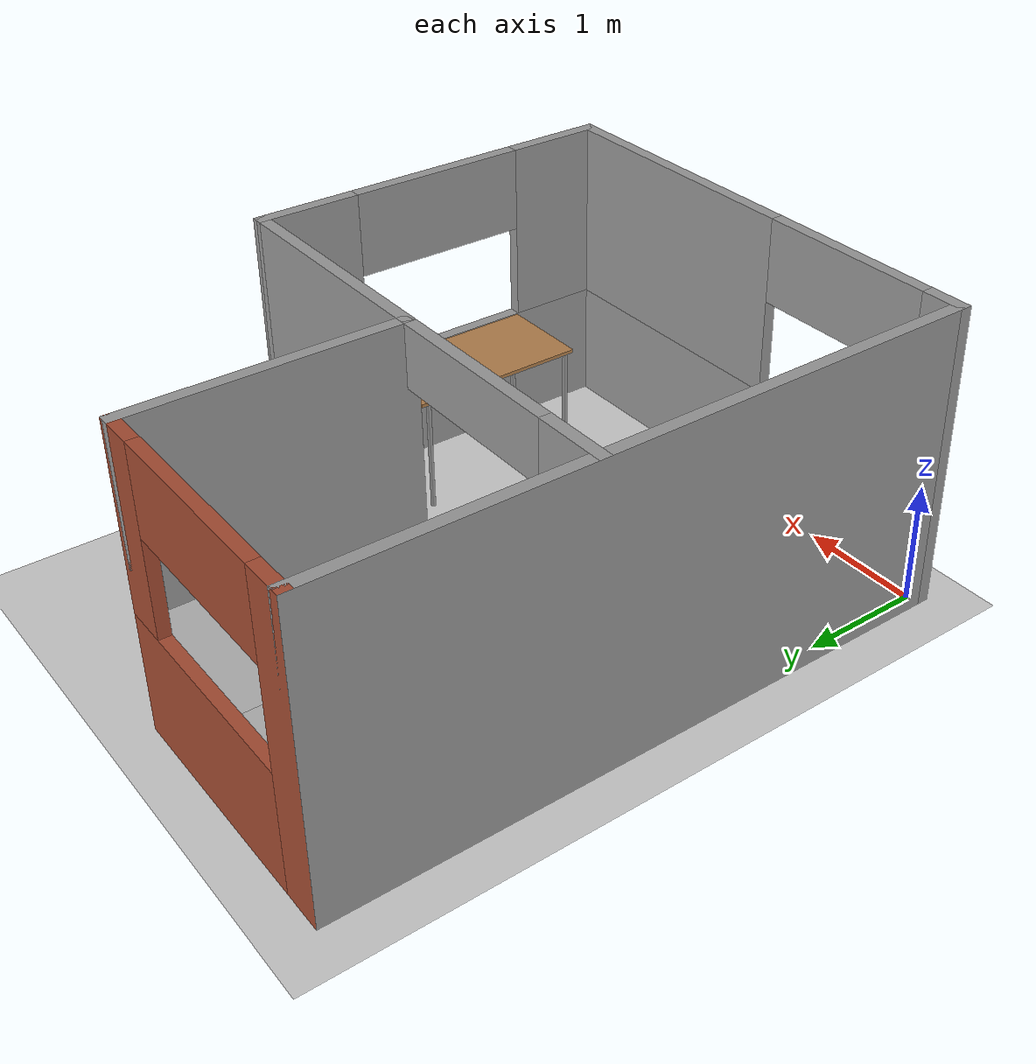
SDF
<sdf version="1.6">
 <world name="default">
  <light name="sun" type="directional">
   <pose>0 0 10 0 -0 0</pose>
   <diffuse>0.8 0.8 0.8 1</diffuse>
   <specular>0.2 0.2 0.2 1</specular>
   <attenuation>
    <range>1000</range>
    <constant>0.9</constant>
    <linear>0.01</linear>
    <quadratic>0.001</quadratic>
   </attenuation>
   <direction>-0.5 0.1 -0.9</direction>
  </light>
  <model name="ground_plane">
   <static>1</static>
   <link name="link">
    <collision name="collision">
     <geometry><plane><normal>0 0 1</normal><size>100 100</size></plane></geometry>
     <surface>
      <contact><collide_bitmask>65535</collide_bitmask></contact>
      <friction><ode><mu>100</mu><mu2>50</mu2></ode></friction>
     </surface>
    </collision>
    <visual name="visual">
     <cast_shadows>0</cast_shadows>
     <geometry><plane><normal>0 0 1</normal><size>100 100</size></plane></geometry>
     <material>
      <script><uri>file://media/materials/scripts/gazebo.material</uri><name>Gazebo/Grey</name></script>
     </material>
    </visual>
   </link>
  </model>
  <gravity>0 0 -9.8</gravity>
  <magnetic_field>6e-06 2.3e-05 -4.2e-05</magnetic_field>
  <atmosphere type="adiabatic"/>
  <physics name="default_physics" default="0" type="ode">
   <max_step_size>0.001</max_step_size>
   <real_time_factor>1</real_time_factor>
   <real_time_update_rate>1000</real_time_update_rate>
  </physics>
  <scene><ambient>0.4 0.4 0.4 1</ambient><background>0.7 0.7 0.7 1</background><shadows>1</shadows></scene>
  <audio><device>default</device></audio>
  <spherical_coordinates>
   <surface_model>EARTH_WGS84</surface_model>
   <latitude_deg>0</latitude_deg>
   <longitude_deg>0</longitude_deg>
   <elevation>0</elevation>
   <heading_deg>0</heading_deg>
  </spherical_coordinates>
  <model name="table">
   <static>1</static>
   <link name="link">
    <collision name="surface">
     <pose>0 0 1 0 -0 0</pose>
     <geometry><box><size>1.5 0.8 0.03</size></box></geometry>
     <surface><friction><ode><mu>0.6</mu><mu2>0.6</mu2></ode></friction></surface>
    </collision>
    <visual name="visual1">
     <pose>0 0 1 0 -0 0</pose>
     <geometry><box><size>1.5 0.8 0.03</size></box></geometry>
     <material>
      <script><uri>file://media/materials/scripts/gazebo.material</uri><name>Gazebo/Wood</name></script>
     </material>
    </visual>
    <collision name="front_left_leg">
     <pose>0.68 0.38 0.5 0 -0 0</pose>
     <geometry><cylinder><radius>0.02</radius><length>1</length></cylinder></geometry>
    </collision>
    <visual name="front_left_leg">
     <pose>0.68 0.38 0.5 0 -0 0</pose>
     <geometry><cylinder><radius>0.02</radius><length>1</length></cylinder></geometry>
     <material>
      <script><uri>file://media/materials/scripts/gazebo.material</uri><name>Gazebo/Grey</name></script>
     </material>
    </visual>
    <collision name="front_right_leg">
     <pose>0.68 -0.38 0.5 0 -0 0</pose>
     <geometry><cylinder><radius>0.02</radius><length>1</length></cylinder></geometry>
    </collision>
    <visual name="front_right_leg">
     <pose>0.68 -0.38 0.5 0 -0 0</pose>
     <geometry><cylinder><radius>0.02</radius><length>1</length></cylinder></geometry>
     <material>
      <script><uri>file://media/materials/scripts/gazebo.material</uri><name>Gazebo/Grey</name></script>
     </material>
    </visual>
    <collision name="back_right_leg">
     <pose>-0.68 -0.38 0.5 0 -0 0</pose>
     <geometry><cylinder><radius>0.02</radius><length>1</length></cylinder></geometry>
    </collision>
    <visual name="back_right_leg">
     <pose>-0.68 -0.38 0.5 0 -0 0</pose>
     <geometry><cylinder><radius>0.02</radius><length>1</length></cylinder></geometry>
     <material>
      <script><uri>file://media/materials/scripts/gazebo.material</uri><name>Gazebo/Grey</name></script>
     </material>
    </visual>
    <collision name="back_left_leg">
     <pose>-0.68 0.38 0.5 0 -0 0</pose>
     <geometry><cylinder><radius>0.02</radius><length>1</length></cylinder></geometry>
    </collision>
    <visual name="back_left_leg">
     <pose>-0.68 0.38 0.5 0 -0 0</pose>
     <geometry><cylinder><radius>0.02</radius><length>1</length></cylinder></geometry>
     <material>
      <script><uri>file://media/materials/scripts/gazebo.material</uri><name>Gazebo/Grey</name></script>
     </material>
    </visual>
   </link>
   <pose>3.6 1.5 -0.025 0 -0 1.5708</pose>
  </model>
  <model name="counter">
   <link name="link">
    <inertial>
     <mass>1</mass>
     <inertia>
      <ixx>0.166667</ixx>
      <ixy>0</ixy>
      <ixz>0</ixz>
      <iyy>0.166667</iyy>
      <iyz>0</iyz>
      <izz>0.166667</izz>
     </inertia>
    </inertial>
    <visual name="visual">
     <geometry><box><size>1.19 0.5 1</size></box></geometry>
     <material>
      <script>
       <uri>model://counter/materials/scripts</uri>
       <uri>model://counter/materials/textures</uri>
       <name>counterMat/Diffuse</name>
      </script>
      <shader type="vertex"><normal_map>__default__</normal_map></shader>
      <ambient>0.3 0.3 0.3 1</ambient>
      <diffuse>0.7 0.7 0.7 1</diffuse>
      <specular>0.01 0.01 0.01 1</specular>
      <emissive>0 0 0 1</emissive>
     </material>
    </visual>
    <collision name="collision">
     <geometry><box><size>1.19 0.5 1</size></box></geometry>
     <surface>
      <friction>
       <ode><mu>1</mu><mu2>1</mu2><fdir1>0 0 0</fdir1><slip1>0</slip1><slip2>0</slip2></ode>
       <torsional>
        <coefficient>1</coefficient>
        <patch_radius>0</patch_radius>
        <surface_radius>0</surface_radius>
        <use_patch_radius>1</use_patch_radius>
        <ode><slip>0</slip></ode>
       </torsional>
      </friction>
      <bounce><restitution_coefficient>0</restitution_coefficient><threshold>1e+06</threshold></bounce>
      <contact>
       <collide_without_contact>0</collide_without_contact>
       <collide_without_contact_bitmask>1</collide_without_contact_bitmask>
       <collide_bitmask>1</collide_bitmask>
       <ode>
        <soft_cfm>0</soft_cfm>
        <soft_erp>0.2</soft_erp>
        <kp>1e+13</kp>
        <kd>1</kd>
        <max_vel>0.01</max_vel>
        <min_depth>0</min_depth>
       </ode>
       <bullet>
        <split_impulse>1</split_impulse>
        <split_impulse_penetration_threshold>-0.01</split_impulse_penetration_threshold>
        <soft_cfm>0</soft_cfm>
        <soft_erp>0.2</soft_erp>
        <kp>1e+13</kp>
        <kd>1</kd>
       </bullet>
      </contact>
     </surface>
    </collision>
   </link>
   <static>0</static>
   <pose>1.39681 4.84495 0.499996 0 7e-06 3.3e-05</pose>
  </model>
  <model name="sink">
   <link name="link">
    <inertial>
     <mass>1</mass>
     <inertia>
      <ixx>0.166667</ixx>
      <ixy>0</ixy>
      <ixz>0</ixz>
      <iyy>0.166667</iyy>
      <iyz>0</iyz>
      <izz>0.166667</izz>
     </inertia>
    </inertial>
    <visual name="visual">
     <geometry><box><size>0.8 0.5 1</size></box></geometry>
     <material>
      <script>
       <uri>model://sink/materials/scripts</uri>
       <uri>model://sink/materials/textures</uri>
       <name>sinkMat/Diffuse</name>
      </script>
      <shader type="vertex"><normal_map>__default__</normal_map></shader>
      <ambient>0.3 0.3 0.3 1</ambient>
      <diffuse>0.7 0.7 0.7 1</diffuse>
      <specular>0.01 0.01 0.01 1</specular>
      <emissive>0 0 0 1</emissive>
     </material>
    </visual>
    <collision name="collision">
     <geometry><box><size>0.8 0.5 1</size></box></geometry>
     <surface>
      <friction>
       <ode><mu>1</mu><mu2>1</mu2><fdir1>0 0 0</fdir1><slip1>0</slip1><slip2>0</slip2></ode>
       <torsional>
        <coefficient>1</coefficient>
        <patch_radius>0</patch_radius>
        <surface_radius>0</surface_radius>
        <use_patch_radius>1</use_patch_radius>
        <ode><slip>0</slip></ode>
       </torsional>
      </friction>
      <bounce><restitution_coefficient>0</restitution_coefficient><threshold>1e+06</threshold></bounce>
      <contact>
       <collide_without_contact>0</collide_without_contact>
       <collide_without_contact_bitmask>1</collide_without_contact_bitmask>
       <collide_bitmask>1</collide_bitmask>
       <ode>
        <soft_cfm>0</soft_cfm>
        <soft_erp>0.2</soft_erp>
        <kp>1e+13</kp>
        <kd>1</kd>
        <max_vel>0.01</max_vel>
        <min_depth>0</min_depth>
       </ode>
       <bullet>
        <split_impulse>1</split_impulse>
        <split_impulse_penetration_threshold>-0.01</split_impulse_penetration_threshold>
        <soft_cfm>0</soft_cfm>
        <soft_erp>0.2</soft_erp>
        <kp>1e+13</kp>
        <kd>1</kd>
       </bullet>
      </contact>
     </surface>
    </collision>
   </link>
   <static>0</static>
   <pose>0.401811 4.84436 0.5 0 -0 3.2e-05</pose>
  </model>
  <model name="table_1m">
   <static>1</static>
   <link name="link">
    <collision name="surface">
     <pose>0 0 1.01 0 -0 0</pose>
     <geometry><box><size>1 1.01 0.03</size></box></geometry>
    </collision>
    <visual name="visual1">
     <pose>0 0 1.01 0 -0 0</pose>
     <geometry><box><size>1 1.01 0.03</size></box></geometry>
     <material>
      <script><uri>file://media/materials/scripts/gazebo.material</uri><name>Gazebo/Wood</name></script>
     </material>
    </visual>
    <collision name="front_left_leg">
     <pose>0.48 0.38 0.5005 0 -0 0</pose>
     <geometry><cylinder><radius>0.02</radius><length>1.01</length></cylinder></geometry>
    </collision>
    <visual name="front_left_leg">
     <pose>0.48 0.38 0.5005 0 -0 0</pose>
     <geometry><cylinder><radius>0.02</radius><length>1.01</length></cylinder></geometry>
     <material>
      <script><uri>file://media/materials/scripts/gazebo.material</uri><name>Gazebo/Grey</name></script>
     </material>
    </visual>
    <collision name="front_right_leg">
     <pose>0.48 -0.38 0.5005 0 -0 0</pose>
     <geometry><cylinder><radius>0.02</radius><length>1.01</length></cylinder></geometry>
    </collision>
    <visual name="front_right_leg">
     <pose>0.48 -0.38 0.5005 0 -0 0</pose>
     <geometry><cylinder><radius>0.02</radius><length>1.01</length></cylinder></geometry>
     <material>
      <script><uri>file://media/materials/scripts/gazebo.material</uri><name>Gazebo/Grey</name></script>
     </material>
    </visual>
    <collision name="back_right_leg">
     <pose>-0.48 -0.38 0.5005 0 -0 0</pose>
     <geometry><cylinder><radius>0.02</radius><length>1.01</length></cylinder></geometry>
    </collision>
    <visual name="back_right_leg">
     <pose>-0.48 -0.38 0.5005 0 -0 0</pose>
     <geometry><cylinder><radius>0.02</radius><length>1.01</length></cylinder></geometry>
     <material>
      <script><uri>file://media/materials/scripts/gazebo.material</uri><name>Gazebo/Grey</name></script>
     </material>
    </visual>
    <collision name="back_left_leg">
     <pose>-0.48 0.38 0.5005 0 -0 0</pose>
     <geometry><cylinder><radius>0.02</radius><length>1.01</length></cylinder></geometry>
    </collision>
    <visual name="back_left_leg">
     <pose>-0.48 0.38 0.5005 0 -0 0</pose>
     <geometry><cylinder><radius>0.02</radius><length>1.01</length></cylinder></geometry>
     <material>
      <script><uri>file://media/materials/scripts/gazebo.material</uri><name>Gazebo/Grey</name></script>
     </material>
    </visual>
    <velocity_decay><linear>0</linear><angular>0</angular></velocity_decay>
   </link>
   <pose>1 0.5 -0.025 0 -0 0</pose>
  </model>
  <model name="pringles">
   <static>0</static>
   <link name="link">
    <inertial>
     <mass>0.25</mass>
     <inertia><ixx>0</ixx><ixy>0</ixy><ixz>0</ixz><iyy>0</iyy><iyz>0</iyz><izz>0</izz></inertia>
    </inertial>
    <collision name="collision">
     <geometry><cylinder><radius>0.04</radius><length>0.235</length></cylinder></geometry>
    </collision>
    <visual name="visual">
     <geometry><cylinder><radius>0.04</radius><length>0.235</length></cylinder></geometry>
     <material>
      <script>
       <uri>model://pringles/material/scripts</uri>
       <uri>model://pringles/material/textures</uri>
       <name>Custom/pringles</name>
      </script>
     </material>
    </visual>
    <velocity_decay><linear>0</linear><angular>0</angular></velocity_decay>
   </link>
   <pose>0.8796 0.636673 1.1175 4.6e-05 -7.9e-05 -1.6e-05</pose>
  </model>
  <light name="user_point_light_0" type="point">
   <pose>1.30174 1.84081 1 0 -0 0</pose>
   <diffuse>0.5 0.5 0.5 1</diffuse>
   <specular>0.1 0.1 0.1 1</specular>
   <attenuation>
    <range>20</range>
    <constant>0.5</constant>
    <linear>0.01</linear>
    <quadratic>0.001</quadratic>
   </attenuation>
   <cast_shadows>0</cast_shadows>
   <direction>0 0 -1</direction>
  </light>
  <light name="user_point_light_1" type="point">
   <pose>0.591099 4.29155 1 0 -0 0</pose>
   <diffuse>0.5 0.5 0.5 1</diffuse>
   <specular>0.1 0.1 0.1 1</specular>
   <attenuation>
    <range>20</range>
    <constant>0.5</constant>
    <linear>0.01</linear>
    <quadratic>0.001</quadratic>
   </attenuation>
   <cast_shadows>0</cast_shadows>
   <direction>0 0 -1</direction>
  </light>
  <model name="biscuits_pack">
   <static>0</static>
   <link name="link">
    <inertial>
     <mass>0.25</mass>
     <inertia><ixx>0</ixx><ixy>0</ixy><ixz>0</ixz><iyy>0</iyy><iyz>0</iyz><izz>0</izz></inertia>
    </inertial>
    <collision name="collision">
     <geometry><cylinder><radius>0.029</radius><length>0.15</length></cylinder></geometry>
    </collision>
    <visual name="visual">
     <geometry><cylinder><radius>0.029</radius><length>0.15</length></cylinder></geometry>
     <material>
      <script>
       <uri>model://biscuits_pack/material/scripts</uri>
       <uri>model://biscuits_pack/material/textures</uri>
       <name>Custom/biscuits_pack</name>
      </script>
     </material>
    </visual>
    <velocity_decay><linear>0</linear><angular>0</angular></velocity_decay>
   </link>
   <pose>1.12701 0.586823 1.07501 -0.000287 0.000324 -9e-06</pose>
  </model>
  <model name="building_thesis">
   <pose>1.99182 2.54499 0 0 -0 0</pose>
   <link name="Wall_21">
    <pose>-0 -2.6 0 0 -0 0</pose>
    <visual name="Wall_21_Visual_0">
     <pose>-1.925 0 1.25 0 -0 0</pose>
     <geometry><box><size>0.35 0.1 2.5</size></box></geometry>
     <material>
      <script><uri>file://media/materials/scripts/gazebo.material</uri><name>Gazebo/Grey</name></script>
      <ambient>1 1 1 1</ambient>
     </material>
     <meta><layer>0</layer></meta>
    </visual>
    <collision name="Wall_21_Collision_0">
     <geometry><box><size>0.35 0.1 2.5</size></box></geometry>
     <pose>-1.925 0 1.25 0 -0 0</pose>
    </collision>
    <visual name="Wall_21_Visual_1">
     <pose>0.175 0 0.5 0 -0 0</pose>
     <geometry><box><size>3.85 0.1 1</size></box></geometry>
     <material>
      <script><uri>file://media/materials/scripts/gazebo.material</uri><name>Gazebo/Grey</name></script>
      <ambient>1 1 1 1</ambient>
     </material>
     <meta><layer>0</layer></meta>
    </visual>
    <collision name="Wall_21_Collision_1">
     <geometry><box><size>3.85 0.1 1</size></box></geometry>
     <pose>0.175 0 0.5 0 -0 0</pose>
    </collision>
    <visual name="Wall_21_Visual_2">
     <pose>0.925 0 1.75 0 -0 0</pose>
     <geometry><box><size>2.35 0.1 1.5</size></box></geometry>
     <material>
      <script><uri>file://media/materials/scripts/gazebo.material</uri><name>Gazebo/Grey</name></script>
      <ambient>1 1 1 1</ambient>
     </material>
     <meta><layer>0</layer></meta>
    </visual>
    <collision name="Wall_21_Collision_2">
     <geometry><box><size>2.35 0.1 1.5</size></box></geometry>
     <pose>0.925 0 1.75 0 -0 0</pose>
    </collision>
    <visual name="Wall_21_Visual_3">
     <pose>-1 0 2.15 0 -0 0</pose>
     <geometry><box><size>1.5 0.1 0.7</size></box></geometry>
     <material>
      <script><uri>file://media/materials/scripts/gazebo.material</uri><name>Gazebo/Grey</name></script>
      <ambient>1 1 1 1</ambient>
     </material>
     <meta><layer>0</layer></meta>
    </visual>
    <collision name="Wall_21_Collision_3">
     <geometry><box><size>1.5 0.1 0.7</size></box></geometry>
     <pose>-1 0 2.15 0 -0 0</pose>
    </collision>
   </link>
   <link name="Wall_23">
    <pose>-1 2.6 0 0 -0 0</pose>
    <visual name="Wall_23_Visual_0">
     <pose>-0.925 0 1.25 0 -0 0</pose>
     <geometry><box><size>0.35 0.1 2.5</size></box></geometry>
     <material>
      <script><uri>file://media/materials/scripts/gazebo.material</uri><name>Gazebo/Bricks</name></script>
      <ambient>1 1 1 1</ambient>
     </material>
     <meta><layer>0</layer></meta>
    </visual>
    <collision name="Wall_23_Collision_0">
     <geometry><box><size>0.35 0.1 2.5</size></box></geometry>
     <pose>-0.925 0 1.25 0 -0 0</pose>
    </collision>
    <visual name="Wall_23_Visual_1">
     <pose>0.175 0 0.5 0 -0 0</pose>
     <geometry><box><size>1.85 0.1 1</size></box></geometry>
     <material>
      <script><uri>file://media/materials/scripts/gazebo.material</uri><name>Gazebo/Bricks</name></script>
      <ambient>1 1 1 1</ambient>
     </material>
     <meta><layer>0</layer></meta>
    </visual>
    <collision name="Wall_23_Collision_1">
     <geometry><box><size>1.85 0.1 1</size></box></geometry>
     <pose>0.175 0 0.5 0 -0 0</pose>
    </collision>
    <visual name="Wall_23_Visual_2">
     <pose>0.925 0 1.75 0 -0 0</pose>
     <geometry><box><size>0.35 0.1 1.5</size></box></geometry>
     <material>
      <script><uri>file://media/materials/scripts/gazebo.material</uri><name>Gazebo/Bricks</name></script>
      <ambient>1 1 1 1</ambient>
     </material>
     <meta><layer>0</layer></meta>
    </visual>
    <collision name="Wall_23_Collision_2">
     <geometry><box><size>0.35 0.1 1.5</size></box></geometry>
     <pose>0.925 0 1.75 0 -0 0</pose>
    </collision>
    <visual name="Wall_23_Visual_3">
     <pose>0 0 2.15 0 -0 0</pose>
     <geometry><box><size>1.5 0.1 0.7</size></box></geometry>
     <material>
      <script><uri>file://media/materials/scripts/gazebo.material</uri><name>Gazebo/Bricks</name></script>
      <ambient>1 1 1 1</ambient>
     </material>
     <meta><layer>0</layer></meta>
    </visual>
    <collision name="Wall_23_Collision_3">
     <geometry><box><size>1.5 0.1 0.7</size></box></geometry>
     <pose>0 0 2.15 0 -0 0</pose>
    </collision>
   </link>
   <link name="Wall_25">
    <pose>-1 0.5 0 0 -0 0</pose>
    <visual name="Wall_25_Visual_0">
     <pose>-0.8 0 1.25 0 -0 0</pose>
     <geometry><box><size>0.6 0.1 2.5</size></box></geometry>
     <material>
      <script><uri>file://media/materials/scripts/gazebo.material</uri><name>Gazebo/Grey</name></script>
      <ambient>1 1 1 1</ambient>
     </material>
     <meta><layer>0</layer></meta>
    </visual>
    <collision name="Wall_25_Collision_0">
     <geometry><box><size>0.6 0.1 2.5</size></box></geometry>
     <pose>-0.8 0 1.25 0 -0 0</pose>
    </collision>
    <visual name="Wall_25_Visual_1">
     <pose>1.05 0 1.25 0 -0 0</pose>
     <geometry><box><size>0.1 0.1 2.5</size></box></geometry>
     <material>
      <script><uri>file://media/materials/scripts/gazebo.material</uri><name>Gazebo/Grey</name></script>
      <ambient>1 1 1 1</ambient>
     </material>
     <meta><layer>0</layer></meta>
    </visual>
    <collision name="Wall_25_Collision_1">
     <geometry><box><size>0.1 0.1 2.5</size></box></geometry>
     <pose>1.05 0 1.25 0 -0 0</pose>
    </collision>
    <visual name="Wall_25_Visual_2">
     <pose>0.25 0 2.25 0 -0 0</pose>
     <geometry><box><size>1.5 0.1 0.5</size></box></geometry>
     <material>
      <script><uri>file://media/materials/scripts/gazebo.material</uri><name>Gazebo/Grey</name></script>
      <ambient>1 1 1 1</ambient>
     </material>
     <meta><layer>0</layer></meta>
    </visual>
    <collision name="Wall_25_Collision_2">
     <geometry><box><size>1.5 0.1 0.5</size></box></geometry>
     <pose>0.25 0 2.25 0 -0 0</pose>
    </collision>
   </link>
   <link name="Wall_27">
    <pose>2.05 -1.05 0 0 -0 -1.5708</pose>
    <visual name="Wall_27_Visual_0">
     <pose>-1.175 0 1.25 0 -0 0</pose>
     <geometry><box><size>0.85 0.1 2.5</size></box></geometry>
     <material>
      <script><uri>file://media/materials/scripts/gazebo.material</uri><name>Gazebo/Grey</name></script>
      <ambient>1 1 1 1</ambient>
     </material>
     <meta><layer>0</layer></meta>
    </visual>
    <collision name="Wall_27_Collision_0">
     <geometry><box><size>0.85 0.1 2.5</size></box></geometry>
     <pose>-1.175 0 1.25 0 -0 0</pose>
    </collision>
    <visual name="Wall_27_Visual_1">
     <pose>0.425 0 0.5 0 -0 0</pose>
     <geometry><box><size>2.35 0.1 1</size></box></geometry>
     <material>
      <script><uri>file://media/materials/scripts/gazebo.material</uri><name>Gazebo/Grey</name></script>
      <ambient>1 1 1 1</ambient>
     </material>
     <meta><layer>0</layer></meta>
    </visual>
    <collision name="Wall_27_Collision_1">
     <geometry><box><size>2.35 0.1 1</size></box></geometry>
     <pose>0.425 0 0.5 0 -0 0</pose>
    </collision>
    <visual name="Wall_27_Visual_2">
     <pose>1.175 0 1.75 0 -0 0</pose>
     <geometry><box><size>0.85 0.1 1.5</size></box></geometry>
     <material>
      <script><uri>file://media/materials/scripts/gazebo.material</uri><name>Gazebo/Grey</name></script>
      <ambient>1 1 1 1</ambient>
     </material>
     <meta><layer>0</layer></meta>
    </visual>
    <collision name="Wall_27_Collision_2">
     <geometry><box><size>0.85 0.1 1.5</size></box></geometry>
     <pose>1.175 0 1.75 0 -0 0</pose>
    </collision>
    <visual name="Wall_27_Visual_3">
     <pose>0 0 2.15 0 -0 0</pose>
     <geometry><box><size>1.5 0.1 0.7</size></box></geometry>
     <material>
      <script><uri>file://media/materials/scripts/gazebo.material</uri><name>Gazebo/Grey</name></script>
      <ambient>1 1 1 1</ambient>
     </material>
     <meta><layer>0</layer></meta>
    </visual>
    <collision name="Wall_27_Collision_3">
     <geometry><box><size>1.5 0.1 0.7</size></box></geometry>
     <pose>0 0 2.15 0 -0 0</pose>
    </collision>
   </link>
   <link name="Wall_29">
    <collision name="Wall_29_Collision">
     <geometry><box><size>5.3 0.1 2.5</size></box></geometry>
     <pose>0 0 1.25 0 -0 0</pose>
    </collision>
    <visual name="Wall_29_Visual">
     <pose>0 0 1.25 0 -0 0</pose>
     <geometry><box><size>5.3 0.1 2.5</size></box></geometry>
     <material>
      <script><uri>file://media/materials/scripts/gazebo.material</uri><name>Gazebo/Grey</name></script>
      <ambient>1 1 1 1</ambient>
     </material>
     <meta><layer>0</layer></meta>
    </visual>
    <pose>-2.05 0 0 0 -0 1.5708</pose>
   </link>
   <link name="Wall_35">
    <collision name="Wall_35_Collision">
     <geometry><box><size>2.1 0.1 2.5</size></box></geometry>
     <pose>0 0 1.25 0 -0 0</pose>
    </collision>
    <visual name="Wall_35_Visual">
     <pose>0 0 1.25 0 -0 0</pose>
     <geometry><box><size>2.1 0.1 2.5</size></box></geometry>
     <material>
      <script><uri>file://media/materials/scripts/gazebo.material</uri><name>Gazebo/Grey</name></script>
      <ambient>1 1 1 1</ambient>
     </material>
     <meta><layer>0</layer></meta>
    </visual>
    <pose>1.05 0.5 0 0 -0 0</pose>
   </link>
   <link name="Wall_37">
    <collision name="Wall_37_Collision">
     <geometry><box><size>2.2 0.1 2.5</size></box></geometry>
     <pose>0 0 1.25 0 -0 0</pose>
    </collision>
    <visual name="Wall_37_Visual">
     <pose>0 0 1.25 0 -0 0</pose>
     <geometry><box><size>2.2 0.1 2.5</size></box></geometry>
     <material>
      <script><uri>file://media/materials/scripts/gazebo.material</uri><name>Gazebo/Grey</name></script>
      <ambient>1 1 1 1</ambient>
     </material>
     <meta><layer>0</layer></meta>
    </visual>
    <pose>0.05 1.55 0 0 -0 -1.5708</pose>
   </link>
   <static>1</static>
  </model>
 </world>
</sdf>
